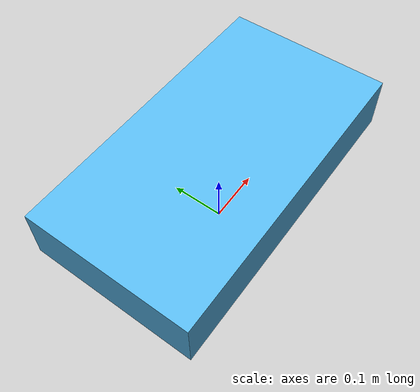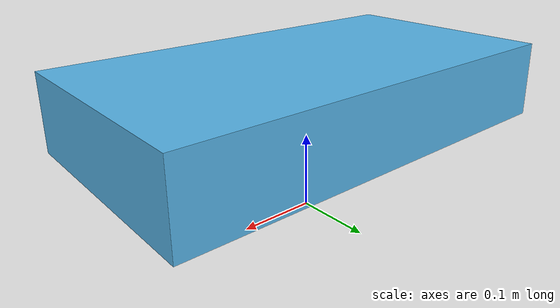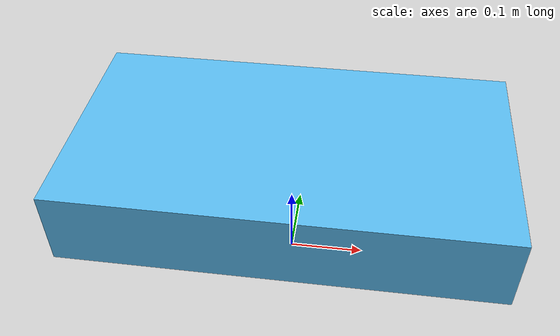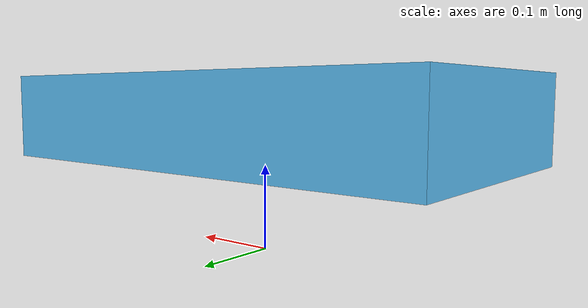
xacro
<?xml version="1.0"?>
<robot xmlns:xacro="http://www.ros.org/wiki/xacro">
    <xacro:property name="body_mass" value="20.0" /> <!-- 减轻车身重量 -->
    <xacro:property name="body_width" value="0.3" />
    <xacro:property name="body_length" value="0.10" />
    <xacro:property name="body_depth" value="0.55" /> <!-- 将原来的0.75减少到0.55 -->

    <!-- BASE -->
    <link name="base_footprint">
            <origin xyz="0 0 0" rpy="0 0 0" />
    </link>

    <link name="base_link">
        <inertial>
            <origin xyz="0.0374140021041951 -0.000373005187591258 -0.0771282894414029" rpy="0 0 0" />
            <mass value="20.0" /> <!-- 相应减少质量 -->
            <inertia ixx="${body_mass/12 * (body_width*body_width + body_length*body_length)}"
                ixy="0" ixz="0"
                iyy="${body_mass/12 * (body_length*body_length + body_depth*body_depth)}" iyz="0"
                izz="${body_mass/12 * (body_width*body_width + body_depth*body_depth)}" />
        </inertial>
        <visual>
            <origin xyz="0 0 0" rpy="0 0 0" />
            <geometry>
                <box size="0.55 0.3 0.10" /> <!-- 将长度从0.75修改为0.55 -->
            </geometry>
        </visual>
        <collision>
            <origin xyz="0.07 0 -0.05" rpy="0 0 0" />
            <geometry>
                <box size="0.55 0.3 0.10" /> <!-- 将长度从0.75修改为0.55 -->
            </geometry>
        </collision>
    </link>

    <joint name="base_joint" type="fixed">
        <parent link="base_footprint" />
        <child link="base_link" />
        <origin xyz="0.0 0.0 0.1555" rpy="0 0 0" /> <!-- 使用原来chassis_joint的高度 -->
    </joint>

</robot>
